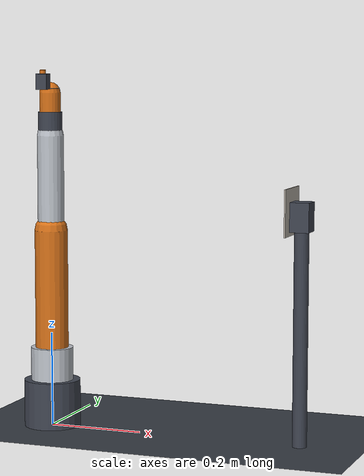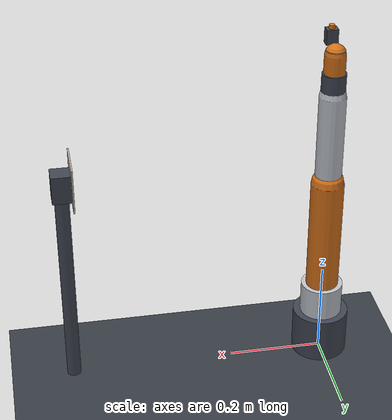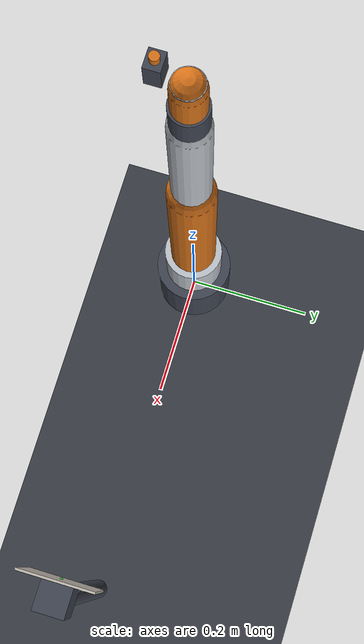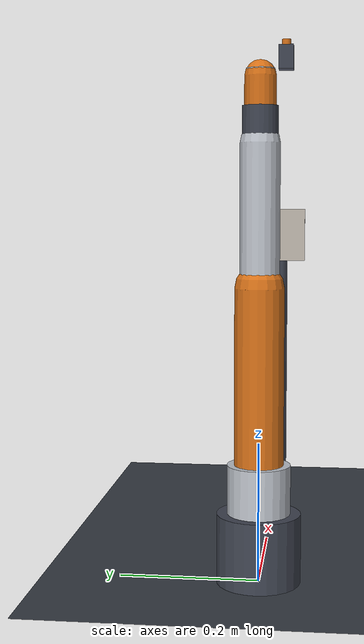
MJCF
<mujoco model="simple6dof-robot-handeye-vs">
  <option gravity="0 0 0" timestep="0.002"/>

  <compiler angle="radian" autolimits="true"/>

  <visual>
    <global offwidth="1280" offheight="720"/>
  </visual>

  <asset>
    <texture name="texplane" type="2d" builtin="checker" mark="edge" markrgb="0.35 0.38 0.42"
             rgb1="0.19 0.21 0.24" rgb2="0.24 0.26 0.29" width="512" height="512"/>
    <material name="matplane" texture="texplane" texrepeat="6 6" texuniform="true"
              reflectance="0.15" shininess="0.4" specular="0.3"/>
    <material name="metal_dark"  rgba="0.25 0.27 0.32 1" shininess="0.6" specular="0.4"/>
    <material name="metal_light" rgba="0.75 0.77 0.80 1" shininess="0.6" specular="0.4"/>
    <material name="accent"      rgba="0.85 0.45 0.10 1" shininess="0.3" specular="0.3"/>

    <texture name="checkerboard_tex" type="cube" file="textures/checkerboard.png"/>
    <material name="checkerboard_mat" texture="checkerboard_tex"
              reflectance="0" shininess="0" specular="0" emission="0.3"/>
  </asset>

  <worldbody>
    <light directional="true" diffuse="0.4 0.4 0.4" specular="0.1 0.1 0.1" pos="0 0 5" dir="0 0 -1" castshadow="false"/>
    <light directional="true" diffuse="0.6 0.6 0.6" specular="0.2 0.2 0.2" pos="0 0 4" dir="0 0 -1"/>
    <light directional="true" diffuse="0.5 0.5 0.5" specular="0.1 0.1 0.1" pos="2 0 1" dir="-1 0 -0.3" castshadow="false"/>
    <geom name="floor" size="2 2 0.01" type="plane" material="matplane"/>

    <camera name="overview" pos="1.1 -0.9 0.8" xyaxes="0.633 0.774 0 -0.372 0.304 0.877" fovy="45"/>

    <body name="board_stand" pos="0.55 0 0">
      <geom type="cylinder" size="0.015 0.22" pos="0 0 0.22" material="metal_dark" contype="0" conaffinity="0"/>
      <geom type="box" size="0.02 0.02 0.03" pos="0 0 0.47" material="metal_dark" contype="0" conaffinity="0"/>
    </body>
    <body name="checkerboard" pos="0.5285 0 0.48" quat="0.7071068 0 -0.7071068 0">
      <geom name="checkerboard_geom" type="box" size="0.048 0.048 0.0015"
            material="checkerboard_mat" contype="0" conaffinity="0"/>
      <site name="board_center" pos="0 0 0.0015" size="0.002" type="sphere" rgba="0 1 0 0.6"/>
    </body>

    <body name="base" pos="0 0 0">
      <geom name="base_geom" type="cylinder" size="0.06 0.05" pos="0 0 0.05" material="metal_dark"/>
      <body name="link1" pos="0 0 0.10">
        <joint name="J1" axis="0 0 1" range="-3.14 3.14"/>
        <geom type="cylinder" size="0.045 0.035" pos="0 0 0.035" material="metal_light"/>
        <body name="link2" pos="0 0 0.07">
          <joint name="J2" axis="0 1 0" range="-2.0 2.0"/>
          <geom type="capsule" fromto="0 0 0  0 0 0.25" size="0.035" material="accent"/>
          <body name="link3" pos="0 0 0.25">
            <joint name="J3" axis="0 1 0" range="-2.6 2.6"/>
            <geom type="capsule" fromto="0 0 0  0 0 0.20" size="0.028" material="metal_light"/>
            <body name="link4" pos="0 0 0.20">
              <joint name="J4" axis="0 0 1" range="-3.14 3.14"/>
              <geom type="cylinder" size="0.025 0.025" pos="0 0 0.025" material="metal_dark"/>
              <body name="link5" pos="0 0 0.05">
                <joint name="J5" axis="0 1 0" range="-2.0 2.0"/>
                <geom type="capsule" fromto="0 0 0  0 0 0.04" size="0.022" material="accent"/>
                <body name="link6" pos="0 0 0.05">
                  <joint name="J6" axis="0 0 1" range="-3.14 3.14"/>
                  <geom name="flange" type="cylinder" size="0.020 0.008" pos="0 0 -0.008" material="metal_light"/>
                  <site name="tool_site" pos="0 0 0" size="0.004" type="sphere" rgba="1 0 0 0.6"/>

                  <geom name="cam_body" type="box" size="0.012 0.010 0.016" pos="0 -0.035 0.014"
                        material="metal_dark" contype="0" conaffinity="0"/>
                  <geom name="cam_lens" type="cylinder" size="0.006 0.004" pos="0 -0.035 0.034"
                        material="accent" contype="0" conaffinity="0"/>
                  <camera name="hand_eye" pos="0 -0.035 0.038" quat="0 1 0 0" fovy="45"/>
                </body>
              </body>
            </body>
          </body>
        </body>
      </body>
    </body>
  </worldbody>
</mujoco>
